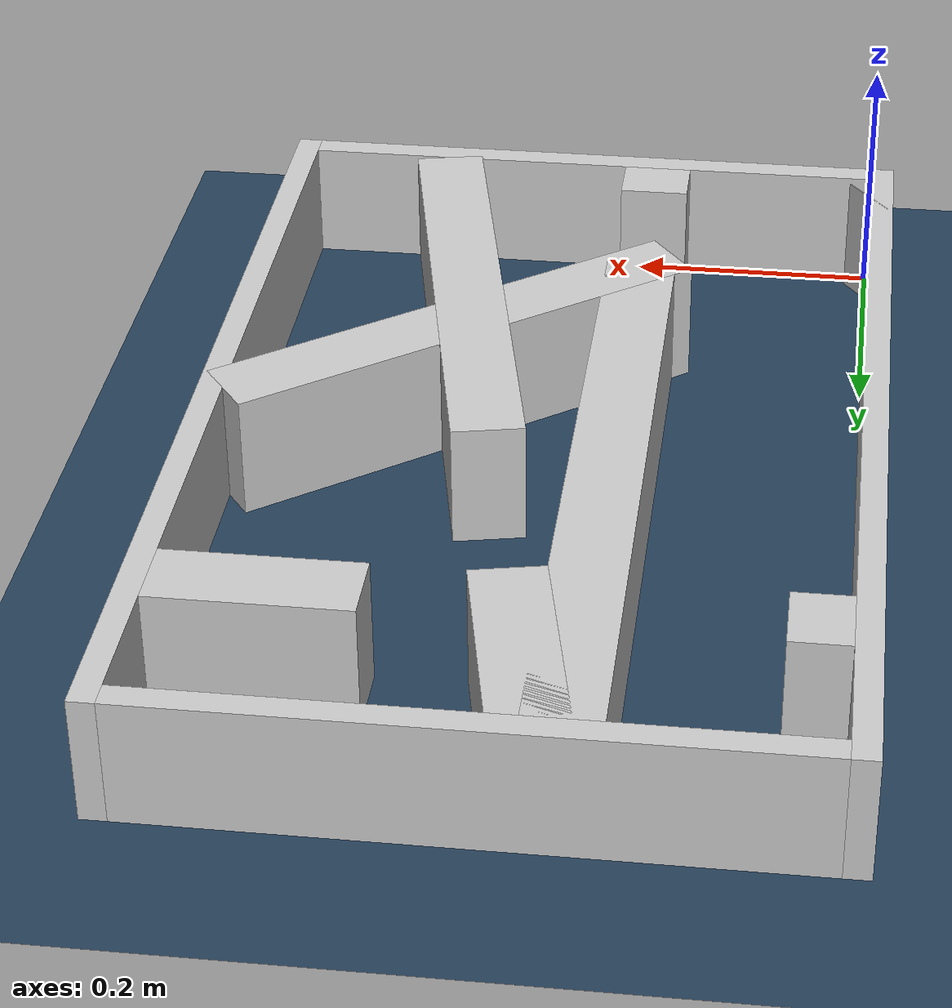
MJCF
<?xml version="1.0" ?>
<mujoco model="generated_real_template">
  <compiler angle="degree"/>
  <option timestep="0.002" integrator="implicitfast" iterations="100" cone="elliptic"/>
  <default>
    <geom density="1"/>
  </default>
  <asset>
    <texture builtin="gradient" height="3072" rgb1="0.3 0.5 0.7" rgb2="0 0 0" type="skybox" width="512"/>
    <texture builtin="checker" height="300" mark="edge" markrgb="0.8 0.8 0.8" name="groundplane" rgb1="0.2 0.3 0.4" rgb2="0.1 0.2 0.3" type="2d" width="300"/>
    <material name="groundplane" reflectance="0.2" texrepeat="5 5" texture="groundplane" texuniform="true"/>
  </asset>
  <worldbody>
    <light dir="0 0 -1" directional="true" pos="0 0 1.5"/>
    <geom name="floor" type="plane" condim="4" friction="0.5 0.005 0.001" material="groundplane" size="0 0 0.05"/>
    <body name="walls">
      <geom name="wall_boundary_left" type="box" condim="4" friction="1.0 0.005 0.0001" rgba="0.8 0.8 0.8 1" pos="-0.010000 0.387500 0.050000" euler="0 0 0.000000" size="0.010000 0.407500 0.050000"/>
      <geom name="wall_boundary_right" type="box" condim="4" friction="1.0 0.005 0.0001" rgba="0.8 0.8 0.8 1" pos="0.500000 0.387500 0.050000" euler="0 0 0.000000" size="0.010000 0.407500 0.050000"/>
      <geom name="wall_boundary_bottom" type="box" condim="4" friction="1.0 0.005 0.0001" rgba="0.8 0.8 0.8 1" pos="0.245000 -0.010000 0.050000" euler="0 0 0.000000" size="0.245000 0.010000 0.050000"/>
      <geom name="wall_boundary_top" type="box" condim="4" friction="1.0 0.005 0.0001" rgba="0.8 0.8 0.8 1" pos="0.245000 0.785000 0.050000" euler="0 0 0.000000" size="0.245000 0.010000 0.050000"/>
      <geom name="wall_inner_1_1" type="box" condim="4" friction="1.0 0.005 0.0001" rgba="0.8 0.8 0.8 1" pos="0.186168 0.022411 0.050000" euler="0 0 90.000000" size="0.022411 0.028500 0.050000"/>
      <geom name="wall_inner_1_2" type="box" condim="4" friction="1.0 0.005 0.0001" rgba="0.8 0.8 0.8 1" pos="0.186168 0.472204 0.050000" euler="0 0 90.000000" size="0.302796 0.028500 0.050000"/>
      <geom name="wall_inner_2_1" type="box" condim="4" friction="1.0 0.005 0.0001" rgba="0.8 0.8 0.8 1" pos="0.325671 0.278705 0.050000" euler="0 0 -142.855684" size="0.206154 0.028500 0.050000"/>
      <geom name="wall_inner_2_2" type="box" condim="4" friction="1.0 0.005 0.0001" rgba="0.8 0.8 0.8 1" pos="0.000202 0.032159 0.050000" euler="0 0 -142.855684" size="0.000254 0.028500 0.050000"/>
      <geom name="wall_inner_3_1" type="box" condim="4" friction="1.0 0.005 0.0001" rgba="0.8 0.8 0.8 1" pos="0.022869 0.647651 0.050000" euler="0 0 0.000000" size="0.022869 0.028500 0.050000"/>
      <geom name="wall_inner_3_2" type="box" condim="4" friction="1.0 0.005 0.0001" rgba="0.8 0.8 0.8 1" pos="0.414216 0.647651 0.050000" euler="0 0 0.000000" size="0.075784 0.028500 0.050000"/>
      <geom name="wall_inner_4_1" type="box" condim="4" friction="1.0 0.005 0.0001" rgba="0.8 0.8 0.8 1" pos="0.325088 0.219898 0.050000" euler="0 0 101.856516" size="0.224691 0.028500 0.050000"/>
      <geom name="wall_inner_4_2" type="box" condim="4" friction="1.0 0.005 0.0001" rgba="0.8 0.8 0.8 1" pos="0.225478 0.694367 0.050000" euler="0 0 101.856516" size="0.082391 0.028500 0.050000"/>
    </body>
  </worldbody>
</mujoco>
